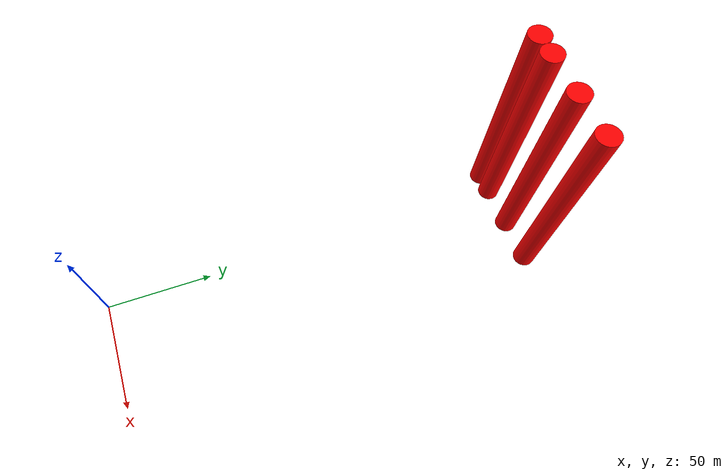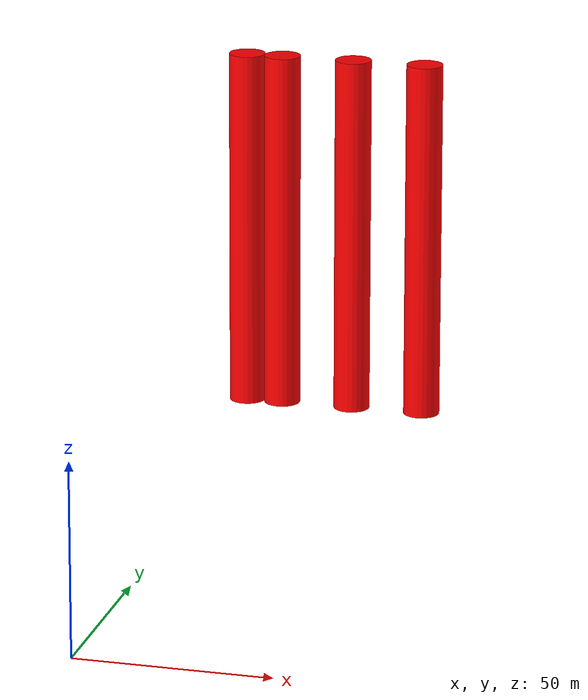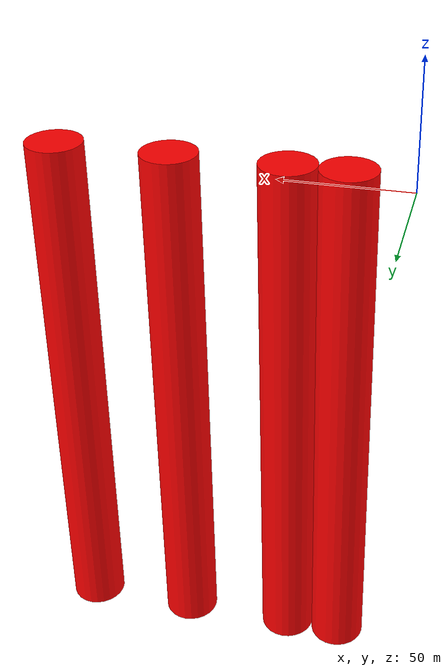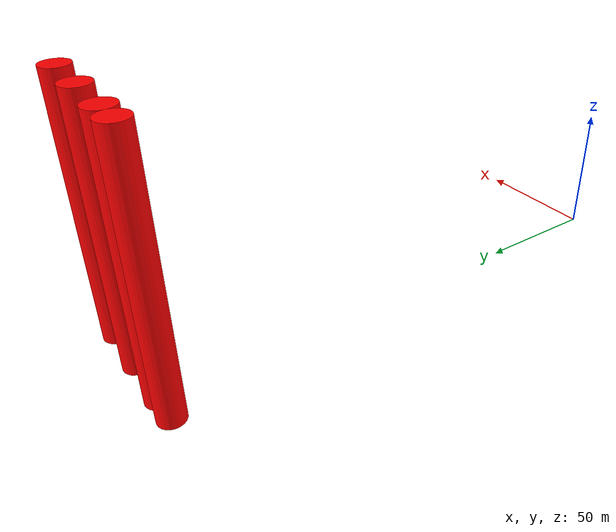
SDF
<sdf version="1.7">
 <world name="runway">
  <physics name="1ms" type="ignore">
   <max_step_size>0.001</max_step_size>
   <real_time_factor>1</real_time_factor>
  </physics>
  <plugin filename="gz-sim-physics-system" name="gz::sim::systems::Physics"/>
  <plugin filename="gz-sim-user-commands-system" name="gz::sim::systems::UserCommands"/>
  <plugin filename="gz-sim-scene-broadcaster-system" name="gz::sim::systems::SceneBroadcaster"/>
  <plugin filename="gz-sim-imu-system" name="gz::sim::systems::Imu"/>
  <plugin filename="gz-sim-navsat-system" name="gz::sim::systems::NavSat"/>
  <plugin filename="gz-sim-sensors-system" name="gz::sim::systems::Sensors">
   <render_engine>ogre2</render_engine>
  </plugin>
  <scene><ambient>1.0 1.0 1.0</ambient><background>0.8 0.8 0.8</background></scene>
  <spherical_coordinates>
   <latitude_deg>-35.363262</latitude_deg>
   <longitude_deg>149.165237</longitude_deg>
   <elevation>584</elevation>
   <heading_deg>0</heading_deg>
   <surface_model>EARTH_WGS84</surface_model>
  </spherical_coordinates>
  <light type="directional" name="sun">
   <pose>0 0 10 0 0 0</pose>
   <diffuse>0.8 0.8 0.8 1</diffuse>
   <specular>0.8 0.8 0.8 1</specular>
   <attenuation>
    <range>1000</range>
    <constant>0.9</constant>
    <linear>0.01</linear>
    <quadratic>0.001</quadratic>
   </attenuation>
   <direction>-0.5 0.1 -0.9</direction>
  </light>
  <model name="axes">
   <static>1</static>
   <link name="link">
    <visual name="r">
     <cast_shadows>0</cast_shadows>
     <pose>5 0 0.1 0 0 0</pose>
     <geometry><box><size>10 0.01 0.01</size></box></geometry>
     <material>
      <ambient>1 0 0 1</ambient>
      <diffuse>1 0 0 1</diffuse>
      <emissive>1 0 0 1</emissive>
      <specular>0.5 0.5 0.5 1</specular>
     </material>
    </visual>
    <visual name="g">
     <cast_shadows>0</cast_shadows>
     <pose>0 5 0.1 0 0 0</pose>
     <geometry><box><size>0.01 10 0.01</size></box></geometry>
     <material>
      <ambient>0 1 0 1</ambient>
      <diffuse>0 1 0 1</diffuse>
      <emissive>0 1 0 1</emissive>
      <specular>0.5 0.5 0.5 1</specular>
     </material>
    </visual>
    <visual name="b">
     <cast_shadows>0</cast_shadows>
     <pose>0 0 5.1 0 0 0</pose>
     <geometry><box><size>0.01 0.01 10</size></box></geometry>
     <material>
      <ambient>0 0 1 1</ambient>
      <diffuse>0 0 1 1</diffuse>
      <emissive>0 0 1 1</emissive>
      <specular>0.5 0.5 0.5 1</specular>
     </material>
    </visual>
   </link>
  </model>
  <model name="giant_cylinder_5">
   <pose>-10 200 50 0 0 0</pose>
   <static>true</static>
   <link name="link">
    <collision name="collision">
     <geometry><cylinder><radius>5.0</radius><length>100.0</length></cylinder></geometry>
    </collision>
    <visual name="visual">
     <geometry><cylinder><radius>5.0</radius><length>100.0</length></cylinder></geometry>
     <material><ambient>1.0 0.0 0.0 1.0</ambient><diffuse>1.0 0.0 0.0 1.0</diffuse></material>
    </visual>
   </link>
  </model>
  <model name="giant_cylinder_6">
   <pose>0 200 50 0 0 0</pose>
   <static>true</static>
   <link name="link">
    <collision name="collision">
     <geometry><cylinder><radius>5.0</radius><length>100.0</length></cylinder></geometry>
    </collision>
    <visual name="visual">
     <geometry><cylinder><radius>5.0</radius><length>100.0</length></cylinder></geometry>
     <material><ambient>1.0 0.0 0.0 1.0</ambient><diffuse>1.0 0.0 0.0 1.0</diffuse></material>
    </visual>
   </link>
  </model>
  <model name="giant_cylinder_7">
   <pose>20 200 50 0 0 0</pose>
   <static>true</static>
   <link name="link">
    <collision name="collision">
     <geometry><cylinder><radius>5.0</radius><length>100.0</length></cylinder></geometry>
    </collision>
    <visual name="visual">
     <geometry><cylinder><radius>5.0</radius><length>100.0</length></cylinder></geometry>
     <material><ambient>1.0 0.0 0.0 1.0</ambient><diffuse>1.0 0.0 0.0 1.0</diffuse></material>
    </visual>
   </link>
  </model>
  <model name="giant_cylinder_8">
   <pose>40 200 50 0 0 0</pose>
   <static>true</static>
   <link name="link">
    <collision name="collision">
     <geometry><cylinder><radius>5.0</radius><length>100.0</length></cylinder></geometry>
    </collision>
    <visual name="visual">
     <geometry><cylinder><radius>5.0</radius><length>100.0</length></cylinder></geometry>
     <material><ambient>1.0 0.0 0.0 1.0</ambient><diffuse>1.0 0.0 0.0 1.0</diffuse></material>
    </visual>
   </link>
  </model>
 </world>
</sdf>
